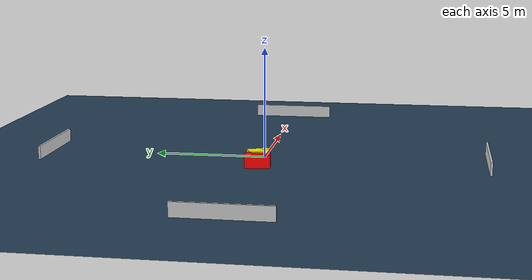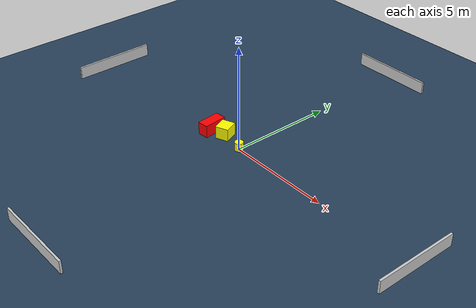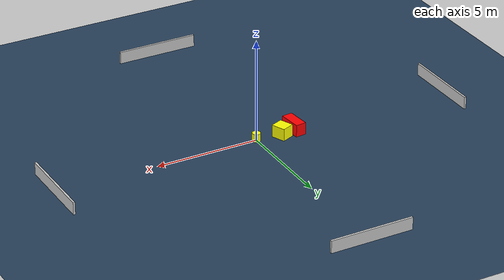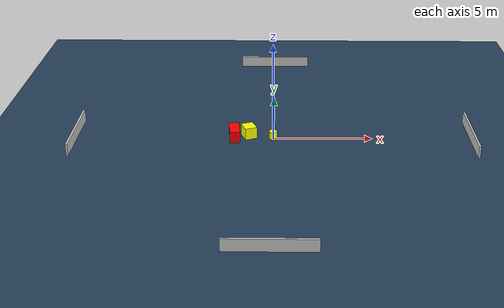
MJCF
<?xml version="1.0" ?>
<mujoco model="generated_environment">
  <option timestep="0.01" integrator="RK4" cone="elliptic"/>
  <default>
    <geom density="1"/>
  </default>
  <asset>
    <texture builtin="gradient" height="3072" name="skybox" rgb1="0.3 0.5 0.7" rgb2="0 0 0" type="skybox" width="512"/>
    <texture builtin="checker" height="300" name="groundplane" rgb1="0.2 0.3 0.4" rgb2="0.1 0.2 0.3" type="2d" width="300"/>
    <material name="groundplane" reflectance="0.2" texrepeat="5 5" texture="groundplane"/>
  </asset>
  <worldbody>
    <light dir="0 0 -1" directional="true" pos="0 0 1.5"/>
    <geom condim="3" friction="0.5 0.005 0.001" material="groundplane" name="floor" pos="0 0 0" size="0 0 0.05" type="plane"/>
    <body name="walls">
      <geom name="wall_1" condim="4" pos="-10.0 0.0 0.3" rgba="0.800000011920929 0.800000011920929 0.800000011920929 1.0" size="0.05 2.0 0.3" type="box"/>
      <geom name="wall_2" condim="4" pos="10.0 0.0 0.3" rgba="0.800000011920929 0.800000011920929 0.800000011920929 1.0" size="0.05 2.0 0.3" type="box"/>
      <geom name="wall_3" condim="4" pos="0.0 -10.0 0.3" rgba="0.800000011920929 0.800000011920929 0.800000011920929 1.0" size="2.0 0.05 0.3" type="box"/>
      <geom name="wall_4" condim="4" pos="0.0 10.0 0.3" rgba="0.800000011920929 0.800000011920929 0.800000011920929 1.0" size="2.0 0.05 0.3" type="box"/>
    </body>
    <body name="robot">
      <joint name="joint_x" type="slide" pos="0 0 0" axis="1 0 0"/>
      <joint name="joint_y" type="slide" pos="0 0 0" axis="0 1 0"/>
      <geom name="robot" type="cylinder" pos="0.0 0.0 0.2" size="0.2 0.2 0.0" mass="5.0" friction="1.0 0.005 0.0001" condim="4" rgba="1.0 1.0 0.0 1.0"/>
    </body>
    <body name="obstacle_1_movable">
      <geom name="obstacle_1_movable" condim="4" pos="-1.228430254202149 0.22548894159194907 0.3" euler="0 0 292.1076247205549" friction="0.0 0.005 0.001" rgba="1.0 1.0 0.0 1.0" size="0.3435096066842501 0.3123289288284702 0.3" type="box" mass="0.1"/>
      <joint type="free"/>
    </body>
    <body name="obstacle_2_static">
      <geom name="obstacle_2_static" condim="4" pos="-1.954665409567204 0.022155298320104964 0.3" euler="0 0 5.200652154249377" friction="0.0 0.005 0.001" rgba="1.0 0.0 0.0 1.0" size="0.25650078893706774 0.5613661010245627 0.3" type="box"/>
    </body>
  </worldbody>
  <actuator>
    <motor name="actuator_x" joint="joint_x" gear="1" ctrlrange="-1 1"/>
    <motor name="actuator_y" joint="joint_y" gear="1" ctrlrange="-1 1"/>
  </actuator>
</mujoco>
